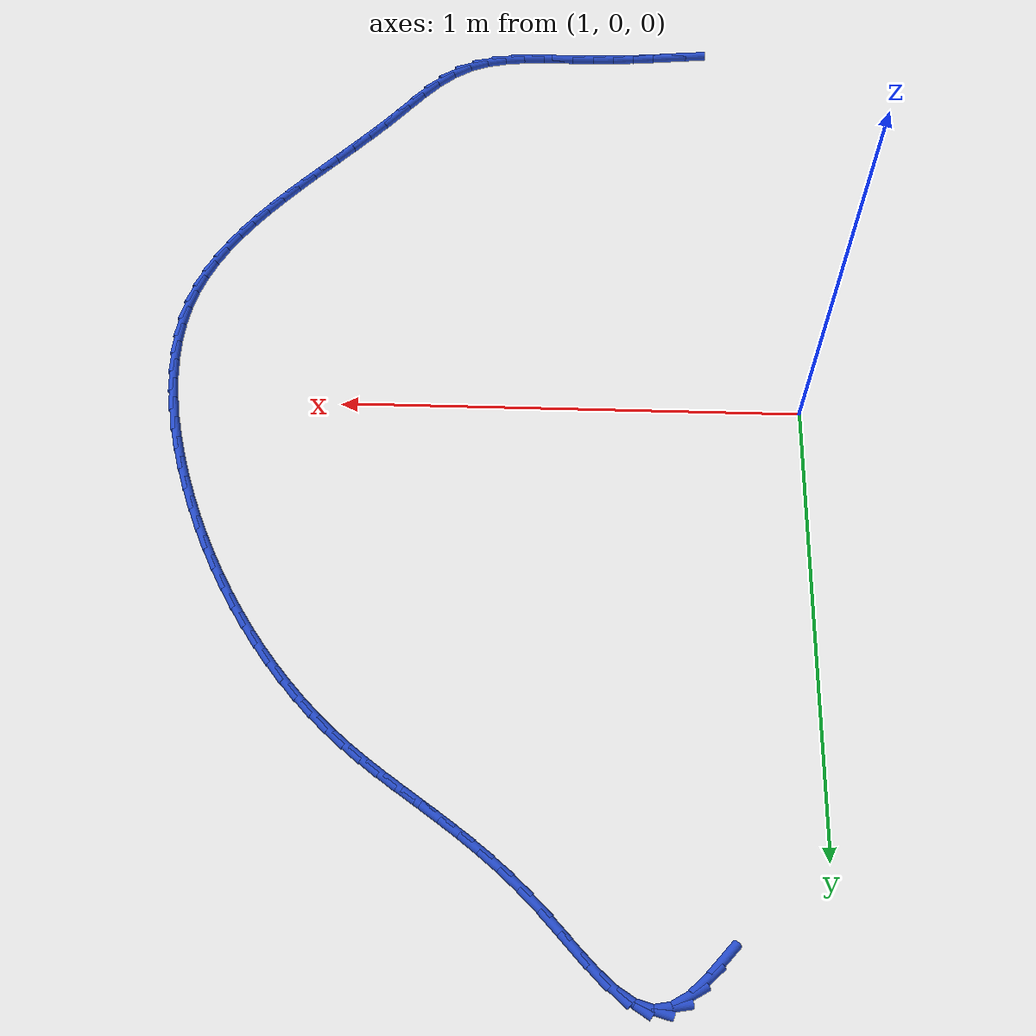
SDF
<sdf version="1.6">
 <world name="default">
  <model name="ground_plane">
   <static>1</static>
   <link name="link">
    <collision name="collision">
     <geometry><plane><normal>0 0 1</normal><size>100 100</size></plane></geometry>
     <surface><friction><ode><mu>100</mu><mu2>50</mu2></ode></friction></surface>
    </collision>
    <visual name="visual">
     <cast_shadows>0</cast_shadows>
     <geometry><plane><normal>0 0 1</normal><size>100 100</size></plane></geometry>
     <material>
      <script><uri>file://media/materials/scripts/gazebo.material</uri><name>Gazebo/WhiteGlow</name></script>
     </material>
    </visual>
   </link>
  </model>
  <model name="line">
   <link name="link_38">
    <pose>1.2104004981334269 1.1912334279561492 0.01 0 1.57 0.8531876766705634</pose>
    <collision name="collision">
     <geometry><cylinder><radius>0.01</radius><length>0.08</length></cylinder></geometry>
    </collision>
    <visual name="visual">
     <material>
      <script><name>Gazebo/Blue</name><uri>file://media/materials/scripts/gazebo.material</uri></script>
     </material>
     <geometry><cylinder><radius>0.01</radius><length>0.08</length></cylinder></geometry>
    </visual>
   </link>
   <link name="link_39">
    <pose>1.2439151647779503 1.2296304329040832 0.01 0 1.57 0.7476529306380669</pose>
    <collision name="collision">
     <geometry><cylinder><radius>0.01</radius><length>0.08</length></cylinder></geometry>
    </collision>
    <visual name="visual">
     <material>
      <script><name>Gazebo/Blue</name><uri>file://media/materials/scripts/gazebo.material</uri></script>
     </material>
     <geometry><cylinder><radius>0.01</radius><length>0.08</length></cylinder></geometry>
    </visual>
   </link>
   <link name="link_40">
    <pose>1.277089932272896 1.2603908068956342 0.01 0 1.57 0.5389867812209073</pose>
    <collision name="collision">
     <geometry><cylinder><radius>0.01</radius><length>0.08</length></cylinder></geometry>
    </collision>
    <visual name="visual">
     <material>
      <script><name>Gazebo/Blue</name><uri>file://media/materials/scripts/gazebo.material</uri></script>
     </material>
     <geometry><cylinder><radius>0.01</radius><length>0.08</length></cylinder></geometry>
    </visual>
   </link>
   <link name="link_41">
    <pose>1.3103740265718757 1.2802964651452695 0.01 0 1.57 0.17068788245969396</pose>
    <collision name="collision">
     <geometry><cylinder><radius>0.01</radius><length>0.08</length></cylinder></geometry>
    </collision>
    <visual name="visual">
     <material>
      <script><name>Gazebo/Blue</name><uri>file://media/materials/scripts/gazebo.material</uri></script>
     </material>
     <geometry><cylinder><radius>0.01</radius><length>0.08</length></cylinder></geometry>
    </visual>
   </link>
   <link name="link_42">
    <pose>1.344216637929233 1.2861297487998196 0.01 0 1.57 -0.28239064304076633</pose>
    <collision name="collision">
     <geometry><cylinder><radius>0.01</radius><length>0.08</length></cylinder></geometry>
    </collision>
    <visual name="visual">
     <material>
      <script><name>Gazebo/Blue</name><uri>file://media/materials/scripts/gazebo.material</uri></script>
     </material>
     <geometry><cylinder><radius>0.01</radius><length>0.08</length></cylinder></geometry>
    </visual>
   </link>
   <link name="link_43">
    <pose>1.3789514058458294 1.2760516493430267 0.01 0 1.57 -0.5813778236442951</pose>
    <collision name="collision">
     <geometry><cylinder><radius>0.01</radius><length>0.08</length></cylinder></geometry>
    </collision>
    <visual name="visual">
     <material>
      <script><name>Gazebo/Blue</name><uri>file://media/materials/scripts/gazebo.material</uri></script>
     </material>
     <geometry><cylinder><radius>0.01</radius><length>0.08</length></cylinder></geometry>
    </visual>
   </link>
   <link name="link_44">
    <pose>1.414539662680874 1.2526652008312225 0.01 0 1.57 -0.7404187485544215</pose>
    <collision name="collision">
     <geometry><cylinder><radius>0.01</radius><length>0.08</length></cylinder></geometry>
    </collision>
    <visual name="visual">
     <material>
      <script><name>Gazebo/Blue</name><uri>file://media/materials/scripts/gazebo.material</uri></script>
     </material>
     <geometry><cylinder><radius>0.01</radius><length>0.08</length></cylinder></geometry>
    </visual>
   </link>
   <link name="link_45">
    <pose>1.4508679009670506 1.219466360550932 0.01 0 1.57 -0.8188701993541283</pose>
    <collision name="collision">
     <geometry><cylinder><radius>0.01</radius><length>0.08</length></cylinder></geometry>
    </collision>
    <visual name="visual">
     <material>
      <script><name>Gazebo/Blue</name><uri>file://media/materials/scripts/gazebo.material</uri></script>
     </material>
     <geometry><cylinder><radius>0.01</radius><length>0.08</length></cylinder></geometry>
    </visual>
   </link>
   <link name="link_46">
    <pose>1.4878226132370451 1.1799510857886837 0.01 0 1.57 -0.8463234692321512</pose>
    <collision name="collision">
     <geometry><cylinder><radius>0.01</radius><length>0.08</length></cylinder></geometry>
    </collision>
    <visual name="visual">
     <material>
      <script><name>Gazebo/Blue</name><uri>file://media/materials/scripts/gazebo.material</uri></script>
     </material>
     <geometry><cylinder><radius>0.01</radius><length>0.08</length></cylinder></geometry>
    </visual>
   </link>
   <link name="link_47">
    <pose>1.525290292023541 1.1376153338310022 0.01 0 1.57 -0.8330621107804461</pose>
    <collision name="collision">
     <geometry><cylinder><radius>0.01</radius><length>0.08</length></cylinder></geometry>
    </collision>
    <visual name="visual">
     <material>
      <script><name>Gazebo/Blue</name><uri>file://media/materials/scripts/gazebo.material</uri></script>
     </material>
     <geometry><cylinder><radius>0.01</radius><length>0.08</length></cylinder></geometry>
    </visual>
   </link>
   <link name="link_48">
    <pose>1.5631574290490504 1.0959547169512265 0.01 0 1.57 -0.7878426848968224</pose>
    <collision name="collision">
     <geometry><cylinder><radius>0.01</radius><length>0.08</length></cylinder></geometry>
    </collision>
    <visual name="visual">
     <material>
      <script><name>Gazebo/Blue</name><uri>file://media/materials/scripts/gazebo.material</uri></script>
     </material>
     <geometry><cylinder><radius>0.01</radius><length>0.08</length></cylinder></geometry>
    </visual>
   </link>
   <link name="link_49">
    <pose>1.6013085242494203 1.0576166419574033 0.01 0 1.57 -0.7408209924492719</pose>
    <collision name="collision">
     <geometry><cylinder><radius>0.01</radius><length>0.08</length></cylinder></geometry>
    </collision>
    <visual name="visual">
     <material>
      <script><name>Gazebo/Blue</name><uri>file://media/materials/scripts/gazebo.material</uri></script>
     </material>
     <geometry><cylinder><radius>0.01</radius><length>0.08</length></cylinder></geometry>
    </visual>
   </link>
   <link name="link_50">
    <pose>1.6396218006115766 1.022575467149405 0.01 0 1.57 -0.6998679395506957</pose>
    <collision name="collision">
     <geometry><cylinder><radius>0.01</radius><length>0.08</length></cylinder></geometry>
    </collision>
    <visual name="visual">
     <material>
      <script><name>Gazebo/Blue</name><uri>file://media/materials/scripts/gazebo.material</uri></script>
     </material>
     <geometry><cylinder><radius>0.01</radius><length>0.08</length></cylinder></geometry>
    </visual>
   </link>
   <link name="link_51">
    <pose>1.6779742477182402 0.9902803037179161 0.01 0 1.57 -0.6664836108621648</pose>
    <collision name="collision">
     <geometry><cylinder><radius>0.01</radius><length>0.08</length></cylinder></geometry>
    </collision>
    <visual name="visual">
     <material>
      <script><name>Gazebo/Blue</name><uri>file://media/materials/scripts/gazebo.material</uri></script>
     </material>
     <geometry><cylinder><radius>0.01</radius><length>0.08</length></cylinder></geometry>
    </visual>
   </link>
   <link name="link_52">
    <pose>1.716242855152132 0.9601802628536195 0.01 0 1.57 -0.6419774500906644</pose>
    <collision name="collision">
     <geometry><cylinder><radius>0.01</radius><length>0.08</length></cylinder></geometry>
    </collision>
    <visual name="visual">
     <material>
      <script><name>Gazebo/Blue</name><uri>file://media/materials/scripts/gazebo.material</uri></script>
     </material>
     <geometry><cylinder><radius>0.01</radius><length>0.08</length></cylinder></geometry>
    </visual>
   </link>
   <link name="link_53">
    <pose>1.7543046124959716 0.9317244557471985 0.01 0 1.57 -0.6274269518577951</pose>
    <collision name="collision">
     <geometry><cylinder><radius>0.01</radius><length>0.08</length></cylinder></geometry>
    </collision>
    <visual name="visual">
     <material>
      <script><name>Gazebo/Blue</name><uri>file://media/materials/scripts/gazebo.material</uri></script>
     </material>
     <geometry><cylinder><radius>0.01</radius><length>0.08</length></cylinder></geometry>
    </visual>
   </link>
   <link name="link_54">
    <pose>1.7920365093324808 0.9043619935893369 0.01 0 1.57 -0.6236538561690059</pose>
    <collision name="collision">
     <geometry><cylinder><radius>0.01</radius><length>0.08</length></cylinder></geometry>
    </collision>
    <visual name="visual">
     <material>
      <script><name>Gazebo/Blue</name><uri>file://media/materials/scripts/gazebo.material</uri></script>
     </material>
     <geometry><cylinder><radius>0.01</radius><length>0.08</length></cylinder></geometry>
    </visual>
   </link>
   <link name="link_55">
    <pose>1.8293155352443795 0.8775419875707181 0.01 0 1.57 -0.6312021035667263</pose>
    <collision name="collision">
     <geometry><cylinder><radius>0.01</radius><length>0.08</length></cylinder></geometry>
    </collision>
    <visual name="visual">
     <material>
      <script><name>Gazebo/Blue</name><uri>file://media/materials/scripts/gazebo.material</uri></script>
     </material>
     <geometry><cylinder><radius>0.01</radius><length>0.08</length></cylinder></geometry>
    </visual>
   </link>
   <link name="link_56">
    <pose>1.866018679814388 0.8507135488820257 0.01 0 1.57 -0.6503021369050908</pose>
    <collision name="collision">
     <geometry><cylinder><radius>0.01</radius><length>0.08</length></cylinder></geometry>
    </collision>
    <visual name="visual">
     <material>
      <script><name>Gazebo/Blue</name><uri>file://media/materials/scripts/gazebo.material</uri></script>
     </material>
     <geometry><cylinder><radius>0.01</radius><length>0.08</length></cylinder></geometry>
    </visual>
   </link>
   <link name="link_57">
    <pose>1.9020229326252278 0.8233257887139428 0.01 0 1.57 -0.6808134018103794</pose>
    <collision name="collision">
     <geometry><cylinder><radius>0.01</radius><length>0.08</length></cylinder></geometry>
    </collision>
    <visual name="visual">
     <material>
      <script><name>Gazebo/Blue</name><uri>file://media/materials/scripts/gazebo.material</uri></script>
     </material>
     <geometry><cylinder><radius>0.01</radius><length>0.08</length></cylinder></geometry>
    </visual>
   </link>
   <link name="link_58">
    <pose>1.9372052832596194 0.7948278182571529 0.01 0 1.57 -0.7216338790706674</pose>
    <collision name="collision">
     <geometry><cylinder><radius>0.01</radius><length>0.08</length></cylinder></geometry>
    </collision>
    <visual name="visual">
     <material>
      <script><name>Gazebo/Blue</name><uri>file://media/materials/scripts/gazebo.material</uri></script>
     </material>
     <geometry><cylinder><radius>0.01</radius><length>0.08</length></cylinder></geometry>
    </visual>
   </link>
   <link name="link_59">
    <pose>1.971446335415138 0.7646969665268483 0.01 0 1.57 -0.7655408222909443</pose>
    <collision name="collision">
     <geometry><cylinder><radius>0.01</radius><length>0.08</length></cylinder></geometry>
    </collision>
    <visual name="visual">
     <material>
      <script><name>Gazebo/Blue</name><uri>file://media/materials/scripts/gazebo.material</uri></script>
     </material>
     <geometry><cylinder><radius>0.01</radius><length>0.08</length></cylinder></geometry>
    </visual>
   </link>
   <link name="link_60">
    <pose>2.004672115926962 0.7327652115122247 0.01 0 1.57 -0.8080452044715579</pose>
    <collision name="collision">
     <geometry><cylinder><radius>0.01</radius><length>0.08</length></cylinder></geometry>
    </collision>
    <visual name="visual">
     <material>
      <script><name>Gazebo/Blue</name><uri>file://media/materials/scripts/gazebo.material</uri></script>
     </material>
     <geometry><cylinder><radius>0.01</radius><length>0.08</length></cylinder></geometry>
    </visual>
   </link>
   <link name="link_61">
    <pose>2.03683966130102 0.6991066445503702 0.01 0 1.57 -0.8491873050449519</pose>
    <collision name="collision">
     <geometry><cylinder><radius>0.01</radius><length>0.08</length></cylinder></geometry>
    </collision>
    <visual name="visual">
     <material>
      <script><name>Gazebo/Blue</name><uri>file://media/materials/scripts/gazebo.material</uri></script>
     </material>
     <geometry><cylinder><radius>0.01</radius><length>0.08</length></cylinder></geometry>
    </visual>
   </link>
   <link name="link_62">
    <pose>2.0679066071387933 0.6638000345201284 0.01 0 1.57 -0.8890954699583018</pose>
    <collision name="collision">
     <geometry><cylinder><radius>0.01</radius><length>0.08</length></cylinder></geometry>
    </collision>
    <visual name="visual">
     <material>
      <script><name>Gazebo/Blue</name><uri>file://media/materials/scripts/gazebo.material</uri></script>
     </material>
     <geometry><cylinder><radius>0.01</radius><length>0.08</length></cylinder></geometry>
    </visual>
   </link>
   <link name="link_63">
    <pose>2.0978305890417643 0.6269241503003451 0.01 0 1.57 -0.9278983278952256</pose>
    <collision name="collision">
     <geometry><cylinder><radius>0.01</radius><length>0.08</length></cylinder></geometry>
    </collision>
    <visual name="visual">
     <material>
      <script><name>Gazebo/Blue</name><uri>file://media/materials/scripts/gazebo.material</uri></script>
     </material>
     <geometry><cylinder><radius>0.01</radius><length>0.08</length></cylinder></geometry>
    </visual>
   </link>
   <link name="link_64">
    <pose>2.1265692426114127 0.588557760769864 0.01 0 1.57 -0.9657232677484174</pose>
    <collision name="collision">
     <geometry><cylinder><radius>0.01</radius><length>0.08</length></cylinder></geometry>
    </collision>
    <visual name="visual">
     <material>
      <script><name>Gazebo/Blue</name><uri>file://media/materials/scripts/gazebo.material</uri></script>
     </material>
     <geometry><cylinder><radius>0.01</radius><length>0.08</length></cylinder></geometry>
    </visual>
   </link>
   <link name="link_65">
    <pose>2.15408020344922 0.5487796348075299 0.01 0 1.57 -1.0026953933297609</pose>
    <collision name="collision">
     <geometry><cylinder><radius>0.01</radius><length>0.08</length></cylinder></geometry>
    </collision>
    <visual name="visual">
     <material>
      <script><name>Gazebo/Blue</name><uri>file://media/materials/scripts/gazebo.material</uri></script>
     </material>
     <geometry><cylinder><radius>0.01</radius><length>0.08</length></cylinder></geometry>
    </visual>
   </link>
   <link name="link_66">
    <pose>2.18032110715667 0.5076685412921871 0.01 0 1.57 -1.0389368538162216</pose>
    <collision name="collision">
     <geometry><cylinder><radius>0.01</radius><length>0.08</length></cylinder></geometry>
    </collision>
    <visual name="visual">
     <material>
      <script><name>Gazebo/Blue</name><uri>file://media/materials/scripts/gazebo.material</uri></script>
     </material>
     <geometry><cylinder><radius>0.01</radius><length>0.08</length></cylinder></geometry>
    </visual>
   </link>
   <link name="link_67">
    <pose>2.20524958933524 0.4653032491026798 0.01 0 1.57 -1.074566461466935</pose>
    <collision name="collision">
     <geometry><cylinder><radius>0.01</radius><length>0.08</length></cylinder></geometry>
    </collision>
    <visual name="visual">
     <material>
      <script><name>Gazebo/Blue</name><uri>file://media/materials/scripts/gazebo.material</uri></script>
     </material>
     <geometry><cylinder><radius>0.01</radius><length>0.08</length></cylinder></geometry>
    </visual>
   </link>
   <link name="link_68">
    <pose>2.2288232855864147 0.42176252711785317 0.01 0 1.57 -1.1096995216364793</pose>
    <collision name="collision">
     <geometry><cylinder><radius>0.01</radius><length>0.08</length></cylinder></geometry>
    </collision>
    <visual name="visual">
     <material>
      <script><name>Gazebo/Blue</name><uri>file://media/materials/scripts/gazebo.material</uri></script>
     </material>
     <geometry><cylinder><radius>0.01</radius><length>0.08</length></cylinder></geometry>
    </visual>
   </link>
   <link name="link_69">
    <pose>2.2509998315116735 0.3771251442165513 0.01 0 1.57 -1.144447812680657</pose>
    <collision name="collision">
     <geometry><cylinder><radius>0.01</radius><length>0.08</length></cylinder></geometry>
    </collision>
    <visual name="visual">
     <material>
      <script><name>Gazebo/Blue</name><uri>file://media/materials/scripts/gazebo.material</uri></script>
     </material>
     <geometry><cylinder><radius>0.01</radius><length>0.08</length></cylinder></geometry>
    </visual>
   </link>
   <link name="link_70">
    <pose>2.2717368627124976 0.3314698692776187 0.01 0 1.57 -1.1789196643173074</pose>
    <collision name="collision">
     <geometry><cylinder><radius>0.01</radius><length>0.08</length></cylinder></geometry>
    </collision>
    <visual name="visual">
     <material>
      <script><name>Gazebo/Blue</name><uri>file://media/materials/scripts/gazebo.material</uri></script>
     </material>
     <geometry><cylinder><radius>0.01</radius><length>0.08</length></cylinder></geometry>
    </visual>
   </link>
   <link name="link_71">
    <pose>2.29099201479037 0.2848754711798995 0.01 0 1.57 -1.2132200920912526</pose>
    <collision name="collision">
     <geometry><cylinder><radius>0.01</radius><length>0.08</length></cylinder></geometry>
    </collision>
    <visual name="visual">
     <material>
      <script><name>Gazebo/Blue</name><uri>file://media/materials/scripts/gazebo.material</uri></script>
     </material>
     <geometry><cylinder><radius>0.01</radius><length>0.08</length></cylinder></geometry>
    </visual>
   </link>
   <link name="link_72">
    <pose>2.3087229233467705 0.23742071880223897 0.01 0 1.57 -1.2476134934394438</pose>
    <collision name="collision">
     <geometry><cylinder><radius>0.01</radius><length>0.08</length></cylinder></geometry>
    </collision>
    <visual name="visual">
     <material>
      <script><name>Gazebo/Blue</name><uri>file://media/materials/scripts/gazebo.material</uri></script>
     </material>
     <geometry><cylinder><radius>0.01</radius><length>0.08</length></cylinder></geometry>
    </visual>
   </link>
   <link name="link_73">
    <pose>2.3248755414399787 0.1891932254072393 0.01 0 1.57 -1.28401083724129</pose>
    <collision name="collision">
     <geometry><cylinder><radius>0.01</radius><length>0.08</length></cylinder></geometry>
    </collision>
    <visual name="visual">
     <material>
      <script><name>Gazebo/Blue</name><uri>file://media/materials/scripts/gazebo.material</uri></script>
     </material>
     <geometry><cylinder><radius>0.01</radius><length>0.08</length></cylinder></geometry>
    </visual>
   </link>
   <link name="link_74">
    <pose>2.3392732609629903 0.1403733903881421 0.01 0 1.57 -1.323925362202529</pose>
    <collision name="collision">
     <geometry><cylinder><radius>0.01</radius><length>0.08</length></cylinder></geometry>
    </collision>
    <visual name="visual">
     <material>
      <script><name>Gazebo/Blue</name><uri>file://media/materials/scripts/gazebo.material</uri></script>
     </material>
     <geometry><cylinder><radius>0.01</radius><length>0.08</length></cylinder></geometry>
    </visual>
   </link>
   <link name="link_75">
    <pose>2.3516662697518123 0.09119703298654555 0.01 0 1.57 -1.3679795398499448</pose>
    <collision name="collision">
     <geometry><cylinder><radius>0.01</radius><length>0.08</length></cylinder></geometry>
    </collision>
    <visual name="visual">
     <material>
      <script><name>Gazebo/Blue</name><uri>file://media/materials/scripts/gazebo.material</uri></script>
     </material>
     <geometry><cylinder><radius>0.01</radius><length>0.08</length></cylinder></geometry>
    </visual>
   </link>
   <link name="link_76">
    <pose>2.361803774032875 0.041900715581194285 0.01 0 1.57 -1.416854225507179</pose>
    <collision name="collision">
     <geometry><cylinder><radius>0.01</radius><length>0.08</length></cylinder></geometry>
    </collision>
    <visual name="visual">
     <material>
      <script><name>Gazebo/Blue</name><uri>file://media/materials/scripts/gazebo.material</uri></script>
     </material>
     <geometry><cylinder><radius>0.01</radius><length>0.08</length></cylinder></geometry>
    </visual>
   </link>
   <link name="link_77">
    <pose>2.369434980032606 -0.007278999449166249 0.01 0 1.57 -1.4713008723688794</pose>
    <collision name="collision">
     <geometry><cylinder><radius>0.01</radius><length>0.08</length></cylinder></geometry>
    </collision>
    <visual name="visual">
     <material>
      <script><name>Gazebo/Blue</name><uri>file://media/materials/scripts/gazebo.material</uri></script>
     </material>
     <geometry><cylinder><radius>0.01</radius><length>0.08</length></cylinder></geometry>
    </visual>
   </link>
   <link name="link_78">
    <pose>2.374309093977437 -0.056105549725790405 0.01 0 1.57 -1.5321267443274236</pose>
    <collision name="collision">
     <geometry><cylinder><radius>0.01</radius><length>0.08</length></cylinder></geometry>
    </collision>
    <visual name="visual">
     <material>
      <script><name>Gazebo/Blue</name><uri>file://media/materials/scripts/gazebo.material</uri></script>
     </material>
     <geometry><cylinder><radius>0.01</radius><length>0.08</length></cylinder></geometry>
    </visual>
   </link>
   <link name="link_79">
    <pose>2.376175322093798 -0.10434237286993477 0.01 0 1.57 1.541434680574913</pose>
    <collision name="collision">
     <geometry><cylinder><radius>0.01</radius><length>0.08</length></cylinder></geometry>
    </collision>
    <visual name="visual">
     <material>
      <script><name>Gazebo/Blue</name><uri>file://media/materials/scripts/gazebo.material</uri></script>
     </material>
     <geometry><cylinder><radius>0.01</radius><length>0.08</length></cylinder></geometry>
    </visual>
   </link>
   <link name="link_80">
    <pose>2.374782870608116 -0.15175290650285275 0.01 0 1.57 1.4654238759519553</pose>
    <collision name="collision">
     <geometry><cylinder><radius>0.01</radius><length>0.08</length></cylinder></geometry>
    </collision>
    <visual name="visual">
     <material>
      <script><name>Gazebo/Blue</name><uri>file://media/materials/scripts/gazebo.material</uri></script>
     </material>
     <geometry><cylinder><radius>0.01</radius><length>0.08</length></cylinder></geometry>
    </visual>
   </link>
   <link name="link_81">
    <pose>2.369880945746822 -0.19810058824580096 0.01 0 1.57 1.3808280831557527</pose>
    <collision name="collision">
     <geometry><cylinder><radius>0.01</radius><length>0.08</length></cylinder></geometry>
    </collision>
    <visual name="visual">
     <material>
      <script><name>Gazebo/Blue</name><uri>file://media/materials/scripts/gazebo.material</uri></script>
     </material>
     <geometry><cylinder><radius>0.01</radius><length>0.08</length></cylinder></geometry>
    </visual>
   </link>
   <link name="link_82">
    <pose>2.3612187537363445 -0.2431488557200337 0.01 0 1.57 1.2875746226936042</pose>
    <collision name="collision">
     <geometry><cylinder><radius>0.01</radius><length>0.08</length></cylinder></geometry>
    </collision>
    <visual name="visual">
     <material>
      <script><name>Gazebo/Blue</name><uri>file://media/materials/scripts/gazebo.material</uri></script>
     </material>
     <geometry><cylinder><radius>0.01</radius><length>0.08</length></cylinder></geometry>
    </visual>
   </link>
   <link name="link_83">
    <pose>2.3485532073071695 -0.2866662404190576 0.01 0 1.57 1.1929163018523221</pose>
    <collision name="collision">
     <geometry><cylinder><radius>0.01</radius><length>0.08</length></cylinder></geometry>
    </collision>
    <visual name="visual">
     <material>
      <script><name>Gazebo/Blue</name><uri>file://media/materials/scripts/gazebo.material</uri></script>
     </material>
     <geometry><cylinder><radius>0.01</radius><length>0.08</length></cylinder></geometry>
    </visual>
   </link>
   <link name="link_84">
    <pose>2.331908215368675 -0.32859775391314255 0.01 0 1.57 1.1068058095229445</pose>
    <collision name="collision">
     <geometry><cylinder><radius>0.01</radius><length>0.08</length></cylinder></geometry>
    </collision>
    <visual name="visual">
     <material>
      <script><name>Gazebo/Blue</name><uri>file://media/materials/scripts/gazebo.material</uri></script>
     </material>
     <geometry><cylinder><radius>0.01</radius><length>0.08</length></cylinder></geometry>
    </visual>
   </link>
   <link name="link_85">
    <pose>2.311636764701584 -0.36910592282552396 0.01 0 1.57 1.03097315289435</pose>
    <collision name="collision">
     <geometry><cylinder><radius>0.01</radius><length>0.08</length></cylinder></geometry>
    </collision>
    <visual name="visual">
     <material>
      <script><name>Gazebo/Blue</name><uri>file://media/materials/scripts/gazebo.material</uri></script>
     </material>
     <geometry><cylinder><radius>0.01</radius><length>0.08</length></cylinder></geometry>
    </visual>
   </link>
   <link name="link_86">
    <pose>2.2881121352916747 -0.4083666872537505 0.01 0 1.57 0.9658576203450393</pose>
    <collision name="collision">
     <geometry><cylinder><radius>0.01</radius><length>0.08</length></cylinder></geometry>
    </collision>
    <visual name="visual">
     <material>
      <script><name>Gazebo/Blue</name><uri>file://media/materials/scripts/gazebo.material</uri></script>
     </material>
     <geometry><cylinder><radius>0.01</radius><length>0.08</length></cylinder></geometry>
    </visual>
   </link>
   <link name="link_87">
    <pose>2.2617076071247304 -0.44655598729536927 0.01 0 1.57 0.9113443699859226</pose>
    <collision name="collision">
     <geometry><cylinder><radius>0.01</radius><length>0.08</length></cylinder></geometry>
    </collision>
    <visual name="visual">
     <material>
      <script><name>Gazebo/Blue</name><uri>file://media/materials/scripts/gazebo.material</uri></script>
     </material>
     <geometry><cylinder><radius>0.01</radius><length>0.08</length></cylinder></geometry>
    </visual>
   </link>
   <link name="link_88">
    <pose>2.23279646018653 -0.48384976304792704 0.01 0 1.57 0.8669943799122516</pose>
    <collision name="collision">
     <geometry><cylinder><radius>0.01</radius><length>0.08</length></cylinder></geometry>
    </collision>
    <visual name="visual">
     <material>
      <script><name>Gazebo/Blue</name><uri>file://media/materials/scripts/gazebo.material</uri></script>
     </material>
     <geometry><cylinder><radius>0.01</radius><length>0.08</length></cylinder></geometry>
    </visual>
   </link>
   <link name="link_89">
    <pose>2.2017519744628564 -0.5204239546089727 0.01 0 1.57 0.8322295702158696</pose>
    <collision name="collision">
     <geometry><cylinder><radius>0.01</radius><length>0.08</length></cylinder></geometry>
    </collision>
    <visual name="visual">
     <material>
      <script><name>Gazebo/Blue</name><uri>file://media/materials/scripts/gazebo.material</uri></script>
     </material>
     <geometry><cylinder><radius>0.01</radius><length>0.08</length></cylinder></geometry>
    </visual>
   </link>
   <link name="link_90">
    <pose>2.1689474299394895 -0.5564545020760533 0.01 0 1.57 0.8064606510267383</pose>
    <collision name="collision">
     <geometry><cylinder><radius>0.01</radius><length>0.08</length></cylinder></geometry>
    </collision>
    <visual name="visual">
     <material>
      <script><name>Gazebo/Blue</name><uri>file://media/materials/scripts/gazebo.material</uri></script>
     </material>
     <geometry><cylinder><radius>0.01</radius><length>0.08</length></cylinder></geometry>
    </visual>
   </link>
   <link name="link_91">
    <pose>2.13475610660221 -0.5921173455467155 0.01 0 1.57 0.7891654467319834</pose>
    <collision name="collision">
     <geometry><cylinder><radius>0.01</radius><length>0.08</length></cylinder></geometry>
    </collision>
    <visual name="visual">
     <material>
      <script><name>Gazebo/Blue</name><uri>file://media/materials/scripts/gazebo.material</uri></script>
     </material>
     <geometry><cylinder><radius>0.01</radius><length>0.08</length></cylinder></geometry>
    </visual>
   </link>
   <link name="link_92">
    <pose>2.099551284436799 -0.6275884251185082 0.01 0 1.57 0.7799314069892747</pose>
    <collision name="collision">
     <geometry><cylinder><radius>0.01</radius><length>0.08</length></cylinder></geometry>
    </collision>
    <visual name="visual">
     <material>
      <script><name>Gazebo/Blue</name><uri>file://media/materials/scripts/gazebo.material</uri></script>
     </material>
     <geometry><cylinder><radius>0.01</radius><length>0.08</length></cylinder></geometry>
    </visual>
   </link>
   <link name="link_93">
    <pose>2.0637062434290385 -0.6630436808889779 0.01 0 1.57 0.7784747255534007</pose>
    <collision name="collision">
     <geometry><cylinder><radius>0.01</radius><length>0.08</length></cylinder></geometry>
    </collision>
    <visual name="visual">
     <material>
      <script><name>Gazebo/Blue</name><uri>file://media/materials/scripts/gazebo.material</uri></script>
     </material>
     <geometry><cylinder><radius>0.01</radius><length>0.08</length></cylinder></geometry>
    </visual>
   </link>
   <link name="link_94">
    <pose>2.0275942635647075 -0.698659052955673 0.01 0 1.57 0.784644793832675</pose>
    <collision name="collision">
     <geometry><cylinder><radius>0.01</radius><length>0.08</length></cylinder></geometry>
    </collision>
    <visual name="visual">
     <material>
      <script><name>Gazebo/Blue</name><uri>file://media/materials/scripts/gazebo.material</uri></script>
     </material>
     <geometry><cylinder><radius>0.01</radius><length>0.08</length></cylinder></geometry>
    </visual>
   </link>
   <link name="link_95">
    <pose>1.9915886248295882 -0.7346104814161408 0.01 0 1.57 0.7984188831284145</pose>
    <collision name="collision">
     <geometry><cylinder><radius>0.01</radius><length>0.08</length></cylinder></geometry>
    </collision>
    <visual name="visual">
     <material>
      <script><name>Gazebo/Blue</name><uri>file://media/materials/scripts/gazebo.material</uri></script>
     </material>
     <geometry><cylinder><radius>0.01</radius><length>0.08</length></cylinder></geometry>
    </visual>
   </link>
   <link name="link_96">
    <pose>1.956062607209462 -0.7710739063679282 0.01 0 1.57 0.8198886645178955</pose>
    <collision name="collision">
     <geometry><cylinder><radius>0.01</radius><length>0.08</length></cylinder></geometry>
    </collision>
    <visual name="visual">
     <material>
      <script><name>Gazebo/Blue</name><uri>file://media/materials/scripts/gazebo.material</uri></script>
     </material>
     <geometry><cylinder><radius>0.01</radius><length>0.08</length></cylinder></geometry>
    </visual>
   </link>
   <link name="link_97">
    <pose>1.9213894906901083 -0.8082252679085835 0.01 0 1.57 0.8418668307618385</pose>
    <collision name="collision">
     <geometry><cylinder><radius>0.01</radius><length>0.08</length></cylinder></geometry>
    </collision>
    <visual name="visual">
     <material>
      <script><name>Gazebo/Blue</name><uri>file://media/materials/scripts/gazebo.material</uri></script>
     </material>
     <geometry><cylinder><radius>0.01</radius><length>0.08</length></cylinder></geometry>
    </visual>
   </link>
   <link name="link_98">
    <pose>1.8877215878332225 -0.84592764450353 0.01 0 1.57 0.8320448244914661</pose>
    <collision name="collision">
     <geometry><cylinder><radius>0.01</radius><length>0.08</length></cylinder></geometry>
    </collision>
    <visual name="visual">
     <material>
      <script><name>Gazebo/Blue</name><uri>file://media/materials/scripts/gazebo.material</uri></script>
     </material>
     <geometry><cylinder><radius>0.01</radius><length>0.08</length></cylinder></geometry>
    </visual>
   </link>
   <link name="link_99">
    <pose>1.8542476248274777 -0.8826797994635892 0.01 0 1.57 0.7791743253401274</pose>
    <collision name="collision">
     <geometry><cylinder><radius>0.01</radius><length>0.08</length></cylinder></geometry>
    </collision>
    <visual name="visual">
     <material>
      <script><name>Gazebo/Blue</name><uri>file://media/materials/scripts/gazebo.material</uri></script>
     </material>
     <geometry><cylinder><radius>0.01</radius><length>0.08</length></cylinder></geometry>
    </visual>
   </link>
   <link name="link_100">
    <pose>1.8198937369093948 -0.9166087008713433 0.01 0 1.57 0.6778645601539988</pose>
    <collision name="collision">
     <geometry><cylinder><radius>0.01</radius><length>0.08</length></cylinder></geometry>
    </collision>
    <visual name="visual">
     <material>
      <script><name>Gazebo/Blue</name><uri>file://media/materials/scripts/gazebo.material</uri></script>
     </material>
     <geometry><cylinder><radius>0.01</radius><length>0.08</length></cylinder></geometry>
    </visual>
   </link>
   <link name="link_101">
    <pose>1.783586053571718 -0.9458413086769208 0.01 0 1.57 0.5228979361782674</pose>
    <collision name="collision">
     <geometry><cylinder><radius>0.01</radius><length>0.08</length></cylinder></geometry>
    </collision>
    <visual name="visual">
     <material>
      <script><name>Gazebo/Blue</name><uri>file://media/materials/scripts/gazebo.material</uri></script>
     </material>
     <geometry><cylinder><radius>0.01</radius><length>0.08</length></cylinder></geometry>
    </visual>
   </link>
   <link name="link_102">
    <pose>1.7442548591427811 -0.9685124460920808 0.01 0 1.57 0.3426255138566845</pose>
    <collision name="collision">
     <geometry><cylinder><radius>0.01</radius><length>0.08</length></cylinder></geometry>
    </collision>
    <visual name="visual">
     <material>
      <script><name>Gazebo/Blue</name><uri>file://media/materials/scripts/gazebo.material</uri></script>
     </material>
     <geometry><cylinder><radius>0.01</radius><length>0.08</length></cylinder></geometry>
    </visual>
   </link>
   <link name="link_103">
    <pose>1.701383833956577 -0.9838042696063379 0.01 0 1.57 0.19776618572608448</pose>
    <collision name="collision">
     <geometry><cylinder><radius>0.01</radius><length>0.08</length></cylinder></geometry>
    </collision>
    <visual name="visual">
     <material>
      <script><name>Gazebo/Blue</name><uri>file://media/materials/scripts/gazebo.material</uri></script>
     </material>
     <geometry><cylinder><radius>0.01</radius><length>0.08</length></cylinder></geometry>
    </visual>
   </link>
   <link name="link_104">
    <pose>1.6555598223937222 -0.992986736136095 0.01 0 1.57 0.09523073604408067</pose>
    <collision name="collision">
     <geometry><cylinder><radius>0.01</radius><length>0.08</length></cylinder></geometry>
    </collision>
    <visual name="visual">
     <material>
      <script><name>Gazebo/Blue</name><uri>file://media/materials/scripts/gazebo.material</uri></script>
     </material>
     <geometry><cylinder><radius>0.01</radius><length>0.08</length></cylinder></geometry>
    </visual>
   </link>
   <link name="link_105">
    <pose>1.6075004690372534 -0.9975773493876413 0.01 0 1.57 0.03057445262512114</pose>
    <collision name="collision">
     <geometry><cylinder><radius>0.01</radius><length>0.08</length></cylinder></geometry>
    </collision>
    <visual name="visual">
     <material>
      <script><name>Gazebo/Blue</name><uri>file://media/materials/scripts/gazebo.material</uri></script>
     </material>
     <geometry><cylinder><radius>0.01</radius><length>0.08</length></cylinder></geometry>
    </visual>
   </link>
   <link name="link_106">
    <pose>1.5579234184702129 -0.999093613067267 0.01 0 1.57 -0.0008055678999845496</pose>
    <collision name="collision">
     <geometry><cylinder><radius>0.01</radius><length>0.08</length></cylinder></geometry>
    </collision>
    <visual name="visual">
     <material>
      <script><name>Gazebo/Blue</name><uri>file://media/materials/scripts/gazebo.material</uri></script>
     </material>
     <geometry><cylinder><radius>0.01</radius><length>0.08</length></cylinder></geometry>
    </visual>
   </link>
   <link name="link_107">
    <pose>1.5075463152756385 -0.9990530308812607 0.01 0 1.57 -0.0015839289074864322</pose>
    <collision name="collision">
     <geometry><cylinder><radius>0.01</radius><length>0.08</length></cylinder></geometry>
    </collision>
    <visual name="visual">
     <material>
      <script><name>Gazebo/Blue</name><uri>file://media/materials/scripts/gazebo.material</uri></script>
     </material>
     <geometry><cylinder><radius>0.01</radius><length>0.08</length></cylinder></geometry>
    </visual>
   </link>
   <link name="link_108">
    <pose>1.4570868040365712 -0.9989731065359126 0.01 0 1.57 0.024823711353344404</pose>
    <collision name="collision">
     <geometry><cylinder><radius>0.01</radius><length>0.08</length></cylinder></geometry>
    </collision>
    <visual name="visual">
     <material>
      <script><name>Gazebo/Blue</name><uri>file://media/materials/scripts/gazebo.material</uri></script>
     </material>
     <geometry><cylinder><radius>0.01</radius><length>0.08</length></cylinder></geometry>
    </visual>
   </link>
   <link name="link_109">
    <pose>1.4071958866349912 -1.0002118387215604 0.01 0 1.57 0.054528920285498245</pose>
    <collision name="collision">
     <geometry><cylinder><radius>0.01</radius><length>0.08</length></cylinder></geometry>
    </collision>
    <visual name="visual">
     <material>
      <script><name>Gazebo/Blue</name><uri>file://media/materials/scripts/gazebo.material</uri></script>
     </material>
     <geometry><cylinder><radius>0.01</radius><length>0.08</length></cylinder></geometry>
    </visual>
   </link>
   <link name="link_110">
    <pose>1.3580103698595962 -1.002896533265686 0.01 0 1.57 0.07571350961613729</pose>
    <collision name="collision">
     <geometry><cylinder><radius>0.01</radius><length>0.08</length></cylinder></geometry>
    </collision>
    <visual name="visual">
     <material>
      <script><name>Gazebo/Blue</name><uri>file://media/materials/scripts/gazebo.material</uri></script>
     </material>
     <geometry><cylinder><radius>0.01</radius><length>0.08</length></cylinder></geometry>
    </visual>
   </link>
   <link name="link_111">
    <pose>1.3094278379344357 -1.0065819321833254 0.01 0 1.57 0.08790460580349004</pose>
    <collision name="collision">
     <geometry><cylinder><radius>0.01</radius><length>0.08</length></cylinder></geometry>
    </collision>
    <visual name="visual">
     <material>
      <script><name>Gazebo/Blue</name><uri>file://media/materials/scripts/gazebo.material</uri></script>
     </material>
     <geometry><cylinder><radius>0.01</radius><length>0.08</length></cylinder></geometry>
    </visual>
   </link>
   <link name="link_112">
    <pose>1.261344545733722 -1.0108195957762354 0.01 0 1.57 0.09078954446158476</pose>
    <collision name="collision">
     <geometry><cylinder><radius>0.01</radius><length>0.08</length></cylinder></geometry>
    </collision>
    <visual name="visual">
     <material>
      <script><name>Gazebo/Blue</name><uri>file://media/materials/scripts/gazebo.material</uri></script>
     </material>
     <geometry><cylinder><radius>0.01</radius><length>0.08</length></cylinder></geometry>
    </visual>
   </link>
   <link name="link_113">
    <pose>1.2136567481316645 -1.0151610843461714 0.01 0 1.57 0.08413021209504241</pose>
    <collision name="collision">
     <geometry><cylinder><radius>0.01</radius><length>0.08</length></cylinder></geometry>
    </collision>
    <visual name="visual">
     <material>
      <script><name>Gazebo/Blue</name><uri>file://media/materials/scripts/gazebo.material</uri></script>
     </material>
     <geometry><cylinder><radius>0.01</radius><length>0.08</length></cylinder></geometry>
    </visual>
   </link>
  </model>
 </world>
</sdf>
